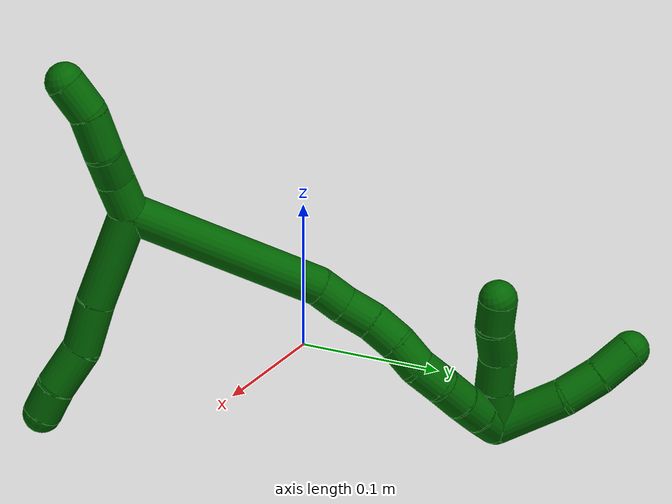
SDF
<sdf version="1.7">
 <world name="default">
  <model name="6">
   <static>0</static>
   <link name="6">
    <collision name="collision-cylinder-e_1_2_8">
     <pose>-0.011917 -0.015446 0.025391 0.54652 -0.381341 -0.108088</pose>
     <geometry><cylinder><radius>0.0125</radius><length>0.064039</length></cylinder></geometry>
     <surface>
      <friction><ode><mu>1.16</mu><mu2>1.16</mu2><slip1>0</slip1><slip2>0</slip2></ode></friction>
      <contact><ode><kp>1e+06</kp><kd>1</kd><max_vel>0</max_vel><min_depth>0.001</min_depth></ode></contact>
     </surface>
    </collision>
    <visual name="visual-cylinder-e_1_2_8">
     <pose>-0.011917 -0.015446 0.025391 0.54652 -0.381341 -0.108088</pose>
     <geometry><cylinder><radius>0.0125</radius><length>0.064039</length></cylinder></geometry>
     <material><ambient>0 0.392157 0.003922 1</ambient></material>
    </visual>
    <collision name="collision-cylinder-e_2_8_9">
     <pose>-0.029578 -0.038301 0.064843 0.484936 -0.346824 -0.086598</pose>
     <geometry><cylinder><radius>0.0125</radius><length>0.033801</length></cylinder></geometry>
     <surface>
      <friction><ode><mu>1.16</mu><mu2>1.16</mu2><slip1>0</slip1><slip2>0</slip2></ode></friction>
      <contact><ode><kp>1e+06</kp><kd>1</kd><max_vel>0</max_vel><min_depth>0.001</min_depth></ode></contact>
     </surface>
    </collision>
    <visual name="visual-cylinder-e_2_8_9">
     <pose>-0.029578 -0.038301 0.064843 0.484936 -0.346824 -0.086598</pose>
     <geometry><cylinder><radius>0.0125</radius><length>0.033801</length></cylinder></geometry>
     <material><ambient>0 0.392157 0.003922 1</ambient></material>
    </visual>
    <collision name="collision-cylinder-e_3_9_10">
     <pose>-0.042484 -0.055246 0.088665 0.773793 -0.48329 -0.200161</pose>
     <geometry><cylinder><radius>0.0125</radius><length>0.030821</length></cylinder></geometry>
     <surface>
      <friction><ode><mu>1.16</mu><mu2>1.16</mu2><slip1>0</slip1><slip2>0</slip2></ode></friction>
      <contact><ode><kp>1e+06</kp><kd>1</kd><max_vel>0</max_vel><min_depth>0.001</min_depth></ode></contact>
     </surface>
    </collision>
    <visual name="visual-cylinder-e_3_9_10">
     <pose>-0.042484 -0.055246 0.088665 0.773793 -0.48329 -0.200161</pose>
     <geometry><cylinder><radius>0.0125</radius><length>0.030821</length></cylinder></geometry>
     <material><ambient>0 0.392157 0.003922 1</ambient></material>
    </visual>
    <collision name="collision-cylinder-e_4_10_6">
     <pose>-0.053104 -0.071053 0.106333 0.670411 -0.330203 -0.115953</pose>
     <geometry><cylinder><radius>0.0125</radius><length>0.021338</length></cylinder></geometry>
     <surface>
      <friction><ode><mu>1.16</mu><mu2>1.16</mu2><slip1>0</slip1><slip2>0</slip2></ode></friction>
      <contact><ode><kp>1e+06</kp><kd>1</kd><max_vel>0</max_vel><min_depth>0.001</min_depth></ode></contact>
     </surface>
    </collision>
    <visual name="visual-cylinder-e_4_10_6">
     <pose>-0.053104 -0.071053 0.106333 0.670411 -0.330203 -0.115953</pose>
     <geometry><cylinder><radius>0.0125</radius><length>0.021338</length></cylinder></geometry>
     <material><ambient>0 0.392157 0.003922 1</ambient></material>
    </visual>
    <collision name="collision-cylinder-e_1_2_11">
     <pose>-4.9e-05 -0.000652 -0.01249 3.08941 -0.003907 -0.14942</pose>
     <geometry><cylinder><radius>0.0125</radius><length>0.025015</length></cylinder></geometry>
     <surface>
      <friction><ode><mu>1.16</mu><mu2>1.16</mu2><slip1>0</slip1><slip2>0</slip2></ode></friction>
      <contact><ode><kp>1e+06</kp><kd>1</kd><max_vel>0</max_vel><min_depth>0.001</min_depth></ode></contact>
     </surface>
    </collision>
    <visual name="visual-cylinder-e_1_2_11">
     <pose>-4.9e-05 -0.000652 -0.01249 3.08941 -0.003907 -0.14942</pose>
     <geometry><cylinder><radius>0.0125</radius><length>0.025015</length></cylinder></geometry>
     <material><ambient>0 0.392157 0.003922 1</ambient></material>
    </visual>
    <collision name="collision-cylinder-e_2_11_12">
     <pose>-0.002108 1.7e-05 -0.035902 -3.02116 -0.180743 1.96749</pose>
     <geometry><cylinder><radius>0.0125</radius><length>0.022368</length></cylinder></geometry>
     <surface>
      <friction><ode><mu>1.16</mu><mu2>1.16</mu2><slip1>0</slip1><slip2>0</slip2></ode></friction>
      <contact><ode><kp>1e+06</kp><kd>1</kd><max_vel>0</max_vel><min_depth>0.001</min_depth></ode></contact>
     </surface>
    </collision>
    <visual name="visual-cylinder-e_2_11_12">
     <pose>-0.002108 1.7e-05 -0.035902 -3.02116 -0.180743 1.96749</pose>
     <geometry><cylinder><radius>0.0125</radius><length>0.022368</length></cylinder></geometry>
     <material><ambient>0 0.392157 0.003922 1</ambient></material>
    </visual>
    <collision name="collision-cylinder-e_3_12_13">
     <pose>-0.003759 0.000919 -0.061124 3.11226 0.025126 1.41651</pose>
     <geometry><cylinder><radius>0.0125</radius><length>0.028621</length></cylinder></geometry>
     <surface>
      <friction><ode><mu>1.16</mu><mu2>1.16</mu2><slip1>0</slip1><slip2>0</slip2></ode></friction>
      <contact><ode><kp>1e+06</kp><kd>1</kd><max_vel>0</max_vel><min_depth>0.001</min_depth></ode></contact>
     </surface>
    </collision>
    <visual name="visual-cylinder-e_3_12_13">
     <pose>-0.003759 0.000919 -0.061124 3.11226 0.025126 1.41651</pose>
     <geometry><cylinder><radius>0.0125</radius><length>0.028621</length></cylinder></geometry>
     <material><ambient>0 0.392157 0.003922 1</ambient></material>
    </visual>
    <collision name="collision-cylinder-e_4_13_5">
     <pose>-0.003786 -0.003383 -0.08677 2.81187 -0.032181 -0.192842</pose>
     <geometry><cylinder><radius>0.0125</radius><length>0.023996</length></cylinder></geometry>
     <surface>
      <friction><ode><mu>1.16</mu><mu2>1.16</mu2><slip1>0</slip1><slip2>0</slip2></ode></friction>
      <contact><ode><kp>1e+06</kp><kd>1</kd><max_vel>0</max_vel><min_depth>0.001</min_depth></ode></contact>
     </surface>
    </collision>
    <visual name="visual-cylinder-e_4_13_5">
     <pose>-0.003786 -0.003383 -0.08677 2.81187 -0.032181 -0.192842</pose>
     <geometry><cylinder><radius>0.0125</radius><length>0.023996</length></cylinder></geometry>
     <material><ambient>0 0.392157 0.003922 1</ambient></material>
    </visual>
    <collision name="collision-cylinder-e_1_2_14">
     <pose>0.033072 0.033706 0.050155 -0.591703 0.500757 -0.155586</pose>
     <geometry><cylinder><radius>0.0125</radius><length>0.137773</length></cylinder></geometry>
     <surface>
      <friction><ode><mu>1.16</mu><mu2>1.16</mu2><slip1>0</slip1><slip2>0</slip2></ode></friction>
      <contact><ode><kp>1e+06</kp><kd>1</kd><max_vel>0</max_vel><min_depth>0.001</min_depth></ode></contact>
     </surface>
    </collision>
    <visual name="visual-cylinder-e_1_2_14">
     <pose>0.033072 0.033706 0.050155 -0.591703 0.500757 -0.155586</pose>
     <geometry><cylinder><radius>0.0125</radius><length>0.137773</length></cylinder></geometry>
     <material><ambient>0 0.392157 0.003922 1</ambient></material>
    </visual>
    <collision name="collision-cylinder-e_2_14_15">
     <pose>0.06812 0.072789 0.108697 -0.570175 0.195895 -0.057579</pose>
     <geometry><cylinder><radius>0.0125</radius><length>0.020315</length></cylinder></geometry>
     <surface>
      <friction><ode><mu>1.16</mu><mu2>1.16</mu2><slip1>0</slip1><slip2>0</slip2></ode></friction>
      <contact><ode><kp>1e+06</kp><kd>1</kd><max_vel>0</max_vel><min_depth>0.001</min_depth></ode></contact>
     </surface>
    </collision>
    <visual name="visual-cylinder-e_2_14_15">
     <pose>0.06812 0.072789 0.108697 -0.570175 0.195895 -0.057579</pose>
     <geometry><cylinder><radius>0.0125</radius><length>0.020315</length></cylinder></geometry>
     <material><ambient>0 0.392157 0.003922 1</ambient></material>
    </visual>
    <collision name="collision-cylinder-e_3_15_16">
     <pose>0.071979 0.085162 0.124719 -0.741758 0.179763 -0.070065</pose>
     <geometry><cylinder><radius>0.0125</radius><length>0.021049</length></cylinder></geometry>
     <surface>
      <friction><ode><mu>1.16</mu><mu2>1.16</mu2><slip1>0</slip1><slip2>0</slip2></ode></friction>
      <contact><ode><kp>1e+06</kp><kd>1</kd><max_vel>0</max_vel><min_depth>0.001</min_depth></ode></contact>
     </surface>
    </collision>
    <visual name="visual-cylinder-e_3_15_16">
     <pose>0.071979 0.085162 0.124719 -0.741758 0.179763 -0.070065</pose>
     <geometry><cylinder><radius>0.0125</radius><length>0.021049</length></cylinder></geometry>
     <material><ambient>0 0.392157 0.003922 1</ambient></material>
    </visual>
    <collision name="collision-cylinder-e_4_16_17">
     <pose>0.074002 0.098562 0.140476 -0.667661 0.013659 -0.004737</pose>
     <geometry><cylinder><radius>0.0125</radius><length>0.02069</length></cylinder></geometry>
     <surface>
      <friction><ode><mu>1.16</mu><mu2>1.16</mu2><slip1>0</slip1><slip2>0</slip2></ode></friction>
      <contact><ode><kp>1e+06</kp><kd>1</kd><max_vel>0</max_vel><min_depth>0.001</min_depth></ode></contact>
     </surface>
    </collision>
    <visual name="visual-cylinder-e_4_16_17">
     <pose>0.074002 0.098562 0.140476 -0.667661 0.013659 -0.004737</pose>
     <geometry><cylinder><radius>0.0125</radius><length>0.02069</length></cylinder></geometry>
     <material><ambient>0 0.392157 0.003922 1</ambient></material>
    </visual>
    <collision name="collision-cylinder-e_5_17_18">
     <pose>0.073962 0.109489 0.157548 -0.467938 -0.018053 0.004303</pose>
     <geometry><cylinder><radius>0.0125</radius><length>0.020057</length></cylinder></geometry>
     <surface>
      <friction><ode><mu>1.16</mu><mu2>1.16</mu2><slip1>0</slip1><slip2>0</slip2></ode></friction>
      <contact><ode><kp>1e+06</kp><kd>1</kd><max_vel>0</max_vel><min_depth>0.001</min_depth></ode></contact>
     </surface>
    </collision>
    <visual name="visual-cylinder-e_5_17_18">
     <pose>0.073962 0.109489 0.157548 -0.467938 -0.018053 0.004303</pose>
     <geometry><cylinder><radius>0.0125</radius><length>0.020057</length></cylinder></geometry>
     <material><ambient>0 0.392157 0.003922 1</ambient></material>
    </visual>
    <collision name="collision-cylinder-e_6_18_19">
     <pose>0.075949 0.118822 0.175009 -0.514333 0.218161 -0.057587</pose>
     <geometry><cylinder><radius>0.0125</radius><length>0.020029</length></cylinder></geometry>
     <surface>
      <friction><ode><mu>1.16</mu><mu2>1.16</mu2><slip1>0</slip1><slip2>0</slip2></ode></friction>
      <contact><ode><kp>1e+06</kp><kd>1</kd><max_vel>0</max_vel><min_depth>0.001</min_depth></ode></contact>
     </surface>
    </collision>
    <visual name="visual-cylinder-e_6_18_19">
     <pose>0.075949 0.118822 0.175009 -0.514333 0.218161 -0.057587</pose>
     <geometry><cylinder><radius>0.0125</radius><length>0.020029</length></cylinder></geometry>
     <material><ambient>0 0.392157 0.003922 1</ambient></material>
    </visual>
    <collision name="collision-cylinder-e_7_19_20">
     <pose>0.081934 0.125985 0.192499 -0.256384 0.390166 -0.050929</pose>
     <geometry><cylinder><radius>0.0125</radius><length>0.020072</length></cylinder></geometry>
     <surface>
      <friction><ode><mu>1.16</mu><mu2>1.16</mu2><slip1>0</slip1><slip2>0</slip2></ode></friction>
      <contact><ode><kp>1e+06</kp><kd>1</kd><max_vel>0</max_vel><min_depth>0.001</min_depth></ode></contact>
     </surface>
    </collision>
    <visual name="visual-cylinder-e_7_19_20">
     <pose>0.081934 0.125985 0.192499 -0.256384 0.390166 -0.050929</pose>
     <geometry><cylinder><radius>0.0125</radius><length>0.020072</length></cylinder></geometry>
     <material><ambient>0 0.392157 0.003922 1</ambient></material>
    </visual>
    <collision name="collision-cylinder-e_8_20_21">
     <pose>0.090541 0.129694 0.210156 -0.154858 0.499299 -0.039558</pose>
     <geometry><cylinder><radius>0.0125</radius><length>0.020009</length></cylinder></geometry>
     <surface>
      <friction><ode><mu>1.16</mu><mu2>1.16</mu2><slip1>0</slip1><slip2>0</slip2></ode></friction>
      <contact><ode><kp>1e+06</kp><kd>1</kd><max_vel>0</max_vel><min_depth>0.001</min_depth></ode></contact>
     </surface>
    </collision>
    <visual name="visual-cylinder-e_8_20_21">
     <pose>0.090541 0.129694 0.210156 -0.154858 0.499299 -0.039558</pose>
     <geometry><cylinder><radius>0.0125</radius><length>0.020009</length></cylinder></geometry>
     <material><ambient>0 0.392157 0.003922 1</ambient></material>
    </visual>
    <collision name="collision-cylinder-e_9_21_1">
     <pose>0.10086 0.131726 0.227143 -0.081405 0.585575 -0.024552</pose>
     <geometry><cylinder><radius>0.0125</radius><length>0.020007</length></cylinder></geometry>
     <surface>
      <friction><ode><mu>1.16</mu><mu2>1.16</mu2><slip1>0</slip1><slip2>0</slip2></ode></friction>
      <contact><ode><kp>1e+06</kp><kd>1</kd><max_vel>0</max_vel><min_depth>0.001</min_depth></ode></contact>
     </surface>
    </collision>
    <visual name="visual-cylinder-e_9_21_1">
     <pose>0.10086 0.131726 0.227143 -0.081405 0.585575 -0.024552</pose>
     <geometry><cylinder><radius>0.0125</radius><length>0.020007</length></cylinder></geometry>
     <material><ambient>0 0.392157 0.003922 1</ambient></material>
    </visual>
    <collision name="collision-cylinder-e_1_1_22">
     <pose>0.10747 0.136105 0.220986 -2.89113 0.072264 -0.559222</pose>
     <geometry><cylinder><radius>0.0125</radius><length>0.029943</length></cylinder></geometry>
     <surface>
      <friction><ode><mu>1.16</mu><mu2>1.16</mu2><slip1>0</slip1><slip2>0</slip2></ode></friction>
      <contact><ode><kp>1e+06</kp><kd>1</kd><max_vel>0</max_vel><min_depth>0.001</min_depth></ode></contact>
     </surface>
    </collision>
    <visual name="visual-cylinder-e_1_1_22">
     <pose>0.10747 0.136105 0.220986 -2.89113 0.072264 -0.559222</pose>
     <geometry><cylinder><radius>0.0125</radius><length>0.029943</length></cylinder></geometry>
     <material><ambient>0 0.392157 0.003922 1</ambient></material>
    </visual>
    <collision name="collision-cylinder-e_2_22_23">
     <pose>0.110429 0.143838 0.195617 -2.78741 0.160186 -0.843198</pose>
     <geometry><cylinder><radius>0.0125</radius><length>0.02355</length></cylinder></geometry>
     <surface>
      <friction><ode><mu>1.16</mu><mu2>1.16</mu2><slip1>0</slip1><slip2>0</slip2></ode></friction>
      <contact><ode><kp>1e+06</kp><kd>1</kd><max_vel>0</max_vel><min_depth>0.001</min_depth></ode></contact>
     </surface>
    </collision>
    <visual name="visual-cylinder-e_2_22_23">
     <pose>0.110429 0.143838 0.195617 -2.78741 0.160186 -0.843198</pose>
     <geometry><cylinder><radius>0.0125</radius><length>0.02355</length></cylinder></geometry>
     <material><ambient>0 0.392157 0.003922 1</ambient></material>
    </visual>
    <collision name="collision-cylinder-e_3_23_24">
     <pose>0.111097 0.151168 0.172409 -2.87968 -0.094673 0.690532</pose>
     <geometry><cylinder><radius>0.0125</radius><length>0.025594</length></cylinder></geometry>
     <surface>
      <friction><ode><mu>1.16</mu><mu2>1.16</mu2><slip1>0</slip1><slip2>0</slip2></ode></friction>
      <contact><ode><kp>1e+06</kp><kd>1</kd><max_vel>0</max_vel><min_depth>0.001</min_depth></ode></contact>
     </surface>
    </collision>
    <visual name="visual-cylinder-e_3_23_24">
     <pose>0.111097 0.151168 0.172409 -2.87968 -0.094673 0.690532</pose>
     <geometry><cylinder><radius>0.0125</radius><length>0.025594</length></cylinder></geometry>
     <material><ambient>0 0.392157 0.003922 1</ambient></material>
    </visual>
    <collision name="collision-cylinder-e_4_24_4">
     <pose>0.110987 0.158396 0.150476 -2.75406 0.105334 -0.524895</pose>
     <geometry><cylinder><radius>0.0125</radius><length>0.020914</length></cylinder></geometry>
     <surface>
      <friction><ode><mu>1.16</mu><mu2>1.16</mu2><slip1>0</slip1><slip2>0</slip2></ode></friction>
      <contact><ode><kp>1e+06</kp><kd>1</kd><max_vel>0</max_vel><min_depth>0.001</min_depth></ode></contact>
     </surface>
    </collision>
    <visual name="visual-cylinder-e_4_24_4">
     <pose>0.110987 0.158396 0.150476 -2.75406 0.105334 -0.524895</pose>
     <geometry><cylinder><radius>0.0125</radius><length>0.020914</length></cylinder></geometry>
     <material><ambient>0 0.392157 0.003922 1</ambient></material>
    </visual>
    <collision name="collision-cylinder-e_1_1_25">
     <pose>0.117305 0.153519 0.231572 -1.75256 0.470411 -0.560268</pose>
     <geometry><cylinder><radius>0.0125</radius><length>0.048169</length></cylinder></geometry>
     <surface>
      <friction><ode><mu>1.16</mu><mu2>1.16</mu2><slip1>0</slip1><slip2>0</slip2></ode></friction>
      <contact><ode><kp>1e+06</kp><kd>1</kd><max_vel>0</max_vel><min_depth>0.001</min_depth></ode></contact>
     </surface>
    </collision>
    <visual name="visual-cylinder-e_1_1_25">
     <pose>0.117305 0.153519 0.231572 -1.75256 0.470411 -0.560268</pose>
     <geometry><cylinder><radius>0.0125</radius><length>0.048169</length></cylinder></geometry>
     <material><ambient>0 0.392157 0.003922 1</ambient></material>
    </visual>
    <collision name="collision-cylinder-e_2_25_26">
     <pose>0.136969 0.184079 0.225334 -1.81535 0.732037 -0.91235</pose>
     <geometry><cylinder><radius>0.0125</radius><length>0.026174</length></cylinder></geometry>
     <surface>
      <friction><ode><mu>1.16</mu><mu2>1.16</mu2><slip1>0</slip1><slip2>0</slip2></ode></friction>
      <contact><ode><kp>1e+06</kp><kd>1</kd><max_vel>0</max_vel><min_depth>0.001</min_depth></ode></contact>
     </surface>
    </collision>
    <visual name="visual-cylinder-e_2_25_26">
     <pose>0.136969 0.184079 0.225334 -1.81535 0.732037 -0.91235</pose>
     <geometry><cylinder><radius>0.0125</radius><length>0.026174</length></cylinder></geometry>
     <material><ambient>0 0.392157 0.003922 1</ambient></material>
    </visual>
    <collision name="collision-cylinder-e_3_26_3">
     <pose>0.154992 0.201624 0.219386 -1.98806 0.808306 -1.16317</pose>
     <geometry><cylinder><radius>0.0125</radius><length>0.025656</length></cylinder></geometry>
     <surface>
      <friction><ode><mu>1.16</mu><mu2>1.16</mu2><slip1>0</slip1><slip2>0</slip2></ode></friction>
      <contact><ode><kp>1e+06</kp><kd>1</kd><max_vel>0</max_vel><min_depth>0.001</min_depth></ode></contact>
     </surface>
    </collision>
    <visual name="visual-cylinder-e_3_26_3">
     <pose>0.154992 0.201624 0.219386 -1.98806 0.808306 -1.16317</pose>
     <geometry><cylinder><radius>0.0125</radius><length>0.025656</length></cylinder></geometry>
     <material><ambient>0 0.392157 0.003922 1</ambient></material>
    </visual>
    <collision name="collision-sphere-3">
     <pose>0.164269 0.209725 0.215795 0 -0 0</pose>
     <geometry><sphere><radius>0.0125</radius></sphere></geometry>
     <surface>
      <friction><ode><mu>1.16</mu><mu2>1.16</mu2><slip1>0</slip1><slip2>0</slip2></ode></friction>
      <contact><ode><kp>1e+06</kp><kd>1</kd><max_vel>0</max_vel><min_depth>0.001</min_depth></ode></contact>
     </surface>
    </collision>
    <visual name="visual-sphere-3">
     <pose>0.164269 0.209725 0.215795 0 -0 0</pose>
     <geometry><sphere><radius>0.0125</radius></sphere></geometry>
     <material><ambient>0 0.392157 0.003922 1</ambient></material>
    </visual>
    <collision name="collision-sphere-26">
     <pose>0.145716 0.193524 0.222977 0 -0 0</pose>
     <geometry><sphere><radius>0.0125</radius></sphere></geometry>
     <surface>
      <friction><ode><mu>1.16</mu><mu2>1.16</mu2><slip1>0</slip1><slip2>0</slip2></ode></friction>
      <contact><ode><kp>1e+06</kp><kd>1</kd><max_vel>0</max_vel><min_depth>0.001</min_depth></ode></contact>
     </surface>
    </collision>
    <visual name="visual-sphere-26">
     <pose>0.145716 0.193524 0.222977 0 -0 0</pose>
     <geometry><sphere><radius>0.0125</radius></sphere></geometry>
     <material><ambient>0 0.392157 0.003922 1</ambient></material>
    </visual>
    <collision name="collision-sphere-25">
     <pose>0.128221 0.174634 0.227691 0 -0 0</pose>
     <geometry><sphere><radius>0.0125</radius></sphere></geometry>
     <surface>
      <friction><ode><mu>1.16</mu><mu2>1.16</mu2><slip1>0</slip1><slip2>0</slip2></ode></friction>
      <contact><ode><kp>1e+06</kp><kd>1</kd><max_vel>0</max_vel><min_depth>0.001</min_depth></ode></contact>
     </surface>
    </collision>
    <visual name="visual-sphere-25">
     <pose>0.128221 0.174634 0.227691 0 -0 0</pose>
     <geometry><sphere><radius>0.0125</radius></sphere></geometry>
     <material><ambient>0 0.392157 0.003922 1</ambient></material>
    </visual>
    <collision name="collision-sphere-4">
     <pose>0.112086 0.162326 0.140849 0 -0 0</pose>
     <geometry><sphere><radius>0.0125</radius></sphere></geometry>
     <surface>
      <friction><ode><mu>1.16</mu><mu2>1.16</mu2><slip1>0</slip1><slip2>0</slip2></ode></friction>
      <contact><ode><kp>1e+06</kp><kd>1</kd><max_vel>0</max_vel><min_depth>0.001</min_depth></ode></contact>
     </surface>
    </collision>
    <visual name="visual-sphere-4">
     <pose>0.112086 0.162326 0.140849 0 -0 0</pose>
     <geometry><sphere><radius>0.0125</radius></sphere></geometry>
     <material><ambient>0 0.392157 0.003922 1</ambient></material>
    </visual>
    <collision name="collision-sphere-24">
     <pose>0.109887 0.154467 0.160104 0 -0 0</pose>
     <geometry><sphere><radius>0.0125</radius></sphere></geometry>
     <surface>
      <friction><ode><mu>1.16</mu><mu2>1.16</mu2><slip1>0</slip1><slip2>0</slip2></ode></friction>
      <contact><ode><kp>1e+06</kp><kd>1</kd><max_vel>0</max_vel><min_depth>0.001</min_depth></ode></contact>
     </surface>
    </collision>
    <visual name="visual-sphere-24">
     <pose>0.109887 0.154467 0.160104 0 -0 0</pose>
     <geometry><sphere><radius>0.0125</radius></sphere></geometry>
     <material><ambient>0 0.392157 0.003922 1</ambient></material>
    </visual>
    <collision name="collision-sphere-23">
     <pose>0.112307 0.147869 0.184714 0 -0 0</pose>
     <geometry><sphere><radius>0.0125</radius></sphere></geometry>
     <surface>
      <friction><ode><mu>1.16</mu><mu2>1.16</mu2><slip1>0</slip1><slip2>0</slip2></ode></friction>
      <contact><ode><kp>1e+06</kp><kd>1</kd><max_vel>0</max_vel><min_depth>0.001</min_depth></ode></contact>
     </surface>
    </collision>
    <visual name="visual-sphere-23">
     <pose>0.112307 0.147869 0.184714 0 -0 0</pose>
     <geometry><sphere><radius>0.0125</radius></sphere></geometry>
     <material><ambient>0 0.392157 0.003922 1</ambient></material>
    </visual>
    <collision name="collision-sphere-22">
     <pose>0.10855 0.139806 0.20652 0 -0 0</pose>
     <geometry><sphere><radius>0.0125</radius></sphere></geometry>
     <surface>
      <friction><ode><mu>1.16</mu><mu2>1.16</mu2><slip1>0</slip1><slip2>0</slip2></ode></friction>
      <contact><ode><kp>1e+06</kp><kd>1</kd><max_vel>0</max_vel><min_depth>0.001</min_depth></ode></contact>
     </surface>
    </collision>
    <visual name="visual-sphere-22">
     <pose>0.10855 0.139806 0.20652 0 -0 0</pose>
     <geometry><sphere><radius>0.0125</radius></sphere></geometry>
     <material><ambient>0 0.392157 0.003922 1</ambient></material>
    </visual>
    <collision name="collision-sphere-1">
     <pose>0.106389 0.132404 0.235452 0 -0 0</pose>
     <geometry><sphere><radius>0.0125</radius></sphere></geometry>
     <surface>
      <friction><ode><mu>1.16</mu><mu2>1.16</mu2><slip1>0</slip1><slip2>0</slip2></ode></friction>
      <contact><ode><kp>1e+06</kp><kd>1</kd><max_vel>0</max_vel><min_depth>0.001</min_depth></ode></contact>
     </surface>
    </collision>
    <visual name="visual-sphere-1">
     <pose>0.106389 0.132404 0.235452 0 -0 0</pose>
     <geometry><sphere><radius>0.0125</radius></sphere></geometry>
     <material><ambient>0 0.392157 0.003922 1</ambient></material>
    </visual>
    <collision name="collision-sphere-21">
     <pose>0.095331 0.131048 0.218834 0 -0 0</pose>
     <geometry><sphere><radius>0.0125</radius></sphere></geometry>
     <surface>
      <friction><ode><mu>1.16</mu><mu2>1.16</mu2><slip1>0</slip1><slip2>0</slip2></ode></friction>
      <contact><ode><kp>1e+06</kp><kd>1</kd><max_vel>0</max_vel><min_depth>0.001</min_depth></ode></contact>
     </surface>
    </collision>
    <visual name="visual-sphere-21">
     <pose>0.095331 0.131048 0.218834 0 -0 0</pose>
     <geometry><sphere><radius>0.0125</radius></sphere></geometry>
     <material><ambient>0 0.392157 0.003922 1</ambient></material>
    </visual>
    <collision name="collision-sphere-11">
     <pose>-9.8e-05 -0.001305 -0.02498 0 -0 0</pose>
     <geometry><sphere><radius>0.0125</radius></sphere></geometry>
     <surface>
      <friction><ode><mu>1.16</mu><mu2>1.16</mu2><slip1>0</slip1><slip2>0</slip2></ode></friction>
      <contact><ode><kp>1e+06</kp><kd>1</kd><max_vel>0</max_vel><min_depth>0.001</min_depth></ode></contact>
     </surface>
    </collision>
    <visual name="visual-sphere-11">
     <pose>-9.8e-05 -0.001305 -0.02498 0 -0 0</pose>
     <geometry><sphere><radius>0.0125</radius></sphere></geometry>
     <material><ambient>0 0.392157 0.003922 1</ambient></material>
    </visual>
    <collision name="collision-sphere-6">
     <pose>-0.056564 -0.077324 0.114242 0 -0 0</pose>
     <geometry><sphere><radius>0.0125</radius></sphere></geometry>
     <surface>
      <friction><ode><mu>1.16</mu><mu2>1.16</mu2><slip1>0</slip1><slip2>0</slip2></ode></friction>
      <contact><ode><kp>1e+06</kp><kd>1</kd><max_vel>0</max_vel><min_depth>0.001</min_depth></ode></contact>
     </surface>
    </collision>
    <visual name="visual-sphere-6">
     <pose>-0.056564 -0.077324 0.114242 0 -0 0</pose>
     <geometry><sphere><radius>0.0125</radius></sphere></geometry>
     <material><ambient>0 0.392157 0.003922 1</ambient></material>
    </visual>
    <collision name="collision-sphere-10">
     <pose>-0.049645 -0.064782 0.098425 0 -0 0</pose>
     <geometry><sphere><radius>0.0125</radius></sphere></geometry>
     <surface>
      <friction><ode><mu>1.16</mu><mu2>1.16</mu2><slip1>0</slip1><slip2>0</slip2></ode></friction>
      <contact><ode><kp>1e+06</kp><kd>1</kd><max_vel>0</max_vel><min_depth>0.001</min_depth></ode></contact>
     </surface>
    </collision>
    <visual name="visual-sphere-10">
     <pose>-0.049645 -0.064782 0.098425 0 -0 0</pose>
     <geometry><sphere><radius>0.0125</radius></sphere></geometry>
     <material><ambient>0 0.392157 0.003922 1</ambient></material>
    </visual>
    <collision name="collision-sphere-9">
     <pose>-0.035323 -0.04571 0.078905 0 -0 0</pose>
     <geometry><sphere><radius>0.0125</radius></sphere></geometry>
     <surface>
      <friction><ode><mu>1.16</mu><mu2>1.16</mu2><slip1>0</slip1><slip2>0</slip2></ode></friction>
      <contact><ode><kp>1e+06</kp><kd>1</kd><max_vel>0</max_vel><min_depth>0.001</min_depth></ode></contact>
     </surface>
    </collision>
    <visual name="visual-sphere-9">
     <pose>-0.035323 -0.04571 0.078905 0 -0 0</pose>
     <geometry><sphere><radius>0.0125</radius></sphere></geometry>
     <material><ambient>0 0.392157 0.003922 1</ambient></material>
    </visual>
    <collision name="collision-sphere-2">
     <geometry><sphere><radius>0.0125</radius></sphere></geometry>
     <surface>
      <friction><ode><mu>1.16</mu><mu2>1.16</mu2><slip1>0</slip1><slip2>0</slip2></ode></friction>
      <contact><ode><kp>1e+06</kp><kd>1</kd><max_vel>0</max_vel><min_depth>0.001</min_depth></ode></contact>
     </surface>
    </collision>
    <visual name="visual-sphere-2">
     <geometry><sphere><radius>0.0125</radius></sphere></geometry>
     <material><ambient>0 0.392157 0.003922 1</ambient></material>
    </visual>
    <collision name="collision-sphere-19">
     <pose>0.078116 0.123632 0.183521 0 -0 0</pose>
     <geometry><sphere><radius>0.0125</radius></sphere></geometry>
     <surface>
      <friction><ode><mu>1.16</mu><mu2>1.16</mu2><slip1>0</slip1><slip2>0</slip2></ode></friction>
      <contact><ode><kp>1e+06</kp><kd>1</kd><max_vel>0</max_vel><min_depth>0.001</min_depth></ode></contact>
     </surface>
    </collision>
    <visual name="visual-sphere-19">
     <pose>0.078116 0.123632 0.183521 0 -0 0</pose>
     <geometry><sphere><radius>0.0125</radius></sphere></geometry>
     <material><ambient>0 0.392157 0.003922 1</ambient></material>
    </visual>
    <collision name="collision-sphere-8">
     <pose>-0.023833 -0.030892 0.050781 0 -0 0</pose>
     <geometry><sphere><radius>0.0125</radius></sphere></geometry>
     <surface>
      <friction><ode><mu>1.16</mu><mu2>1.16</mu2><slip1>0</slip1><slip2>0</slip2></ode></friction>
      <contact><ode><kp>1e+06</kp><kd>1</kd><max_vel>0</max_vel><min_depth>0.001</min_depth></ode></contact>
     </surface>
    </collision>
    <visual name="visual-sphere-8">
     <pose>-0.023833 -0.030892 0.050781 0 -0 0</pose>
     <geometry><sphere><radius>0.0125</radius></sphere></geometry>
     <material><ambient>0 0.392157 0.003922 1</ambient></material>
    </visual>
    <collision name="collision-sphere-12">
     <pose>-0.004119 0.001339 -0.046825 0 -0 0</pose>
     <geometry><sphere><radius>0.0125</radius></sphere></geometry>
     <surface>
      <friction><ode><mu>1.16</mu><mu2>1.16</mu2><slip1>0</slip1><slip2>0</slip2></ode></friction>
      <contact><ode><kp>1e+06</kp><kd>1</kd><max_vel>0</max_vel><min_depth>0.001</min_depth></ode></contact>
     </surface>
    </collision>
    <visual name="visual-sphere-12">
     <pose>-0.004119 0.001339 -0.046825 0 -0 0</pose>
     <geometry><sphere><radius>0.0125</radius></sphere></geometry>
     <material><ambient>0 0.392157 0.003922 1</ambient></material>
    </visual>
    <collision name="collision-sphere-13">
     <pose>-0.0034 0.0005 -0.075424 0 -0 0</pose>
     <geometry><sphere><radius>0.0125</radius></sphere></geometry>
     <surface>
      <friction><ode><mu>1.16</mu><mu2>1.16</mu2><slip1>0</slip1><slip2>0</slip2></ode></friction>
      <contact><ode><kp>1e+06</kp><kd>1</kd><max_vel>0</max_vel><min_depth>0.001</min_depth></ode></contact>
     </surface>
    </collision>
    <visual name="visual-sphere-13">
     <pose>-0.0034 0.0005 -0.075424 0 -0 0</pose>
     <geometry><sphere><radius>0.0125</radius></sphere></geometry>
     <material><ambient>0 0.392157 0.003922 1</ambient></material>
    </visual>
    <collision name="collision-sphere-5">
     <pose>-0.004172 -0.007266 -0.098116 0 -0 0</pose>
     <geometry><sphere><radius>0.0125</radius></sphere></geometry>
     <surface>
      <friction><ode><mu>1.16</mu><mu2>1.16</mu2><slip1>0</slip1><slip2>0</slip2></ode></friction>
      <contact><ode><kp>1e+06</kp><kd>1</kd><max_vel>0</max_vel><min_depth>0.001</min_depth></ode></contact>
     </surface>
    </collision>
    <visual name="visual-sphere-5">
     <pose>-0.004172 -0.007266 -0.098116 0 -0 0</pose>
     <geometry><sphere><radius>0.0125</radius></sphere></geometry>
     <material><ambient>0 0.392157 0.003922 1</ambient></material>
    </visual>
    <collision name="collision-sphere-14">
     <pose>0.066143 0.067411 0.10031 0 -0 0</pose>
     <geometry><sphere><radius>0.0125</radius></sphere></geometry>
     <surface>
      <friction><ode><mu>1.16</mu><mu2>1.16</mu2><slip1>0</slip1><slip2>0</slip2></ode></friction>
      <contact><ode><kp>1e+06</kp><kd>1</kd><max_vel>0</max_vel><min_depth>0.001</min_depth></ode></contact>
     </surface>
    </collision>
    <visual name="visual-sphere-14">
     <pose>0.066143 0.067411 0.10031 0 -0 0</pose>
     <geometry><sphere><radius>0.0125</radius></sphere></geometry>
     <material><ambient>0 0.392157 0.003922 1</ambient></material>
    </visual>
    <collision name="collision-sphere-15">
     <pose>0.070097 0.078167 0.117084 0 -0 0</pose>
     <geometry><sphere><radius>0.0125</radius></sphere></geometry>
     <surface>
      <friction><ode><mu>1.16</mu><mu2>1.16</mu2><slip1>0</slip1><slip2>0</slip2></ode></friction>
      <contact><ode><kp>1e+06</kp><kd>1</kd><max_vel>0</max_vel><min_depth>0.001</min_depth></ode></contact>
     </surface>
    </collision>
    <visual name="visual-sphere-15">
     <pose>0.070097 0.078167 0.117084 0 -0 0</pose>
     <geometry><sphere><radius>0.0125</radius></sphere></geometry>
     <material><ambient>0 0.392157 0.003922 1</ambient></material>
    </visual>
    <collision name="collision-sphere-16">
     <pose>0.073861 0.092158 0.132353 0 -0 0</pose>
     <geometry><sphere><radius>0.0125</radius></sphere></geometry>
     <surface>
      <friction><ode><mu>1.16</mu><mu2>1.16</mu2><slip1>0</slip1><slip2>0</slip2></ode></friction>
      <contact><ode><kp>1e+06</kp><kd>1</kd><max_vel>0</max_vel><min_depth>0.001</min_depth></ode></contact>
     </surface>
    </collision>
    <visual name="visual-sphere-16">
     <pose>0.073861 0.092158 0.132353 0 -0 0</pose>
     <geometry><sphere><radius>0.0125</radius></sphere></geometry>
     <material><ambient>0 0.392157 0.003922 1</ambient></material>
    </visual>
    <collision name="collision-sphere-17">
     <pose>0.074143 0.104967 0.148599 0 -0 0</pose>
     <geometry><sphere><radius>0.0125</radius></sphere></geometry>
     <surface>
      <friction><ode><mu>1.16</mu><mu2>1.16</mu2><slip1>0</slip1><slip2>0</slip2></ode></friction>
      <contact><ode><kp>1e+06</kp><kd>1</kd><max_vel>0</max_vel><min_depth>0.001</min_depth></ode></contact>
     </surface>
    </collision>
    <visual name="visual-sphere-17">
     <pose>0.074143 0.104967 0.148599 0 -0 0</pose>
     <geometry><sphere><radius>0.0125</radius></sphere></geometry>
     <material><ambient>0 0.392157 0.003922 1</ambient></material>
    </visual>
    <collision name="collision-sphere-18">
     <pose>0.073781 0.114012 0.166496 0 -0 0</pose>
     <geometry><sphere><radius>0.0125</radius></sphere></geometry>
     <surface>
      <friction><ode><mu>1.16</mu><mu2>1.16</mu2><slip1>0</slip1><slip2>0</slip2></ode></friction>
      <contact><ode><kp>1e+06</kp><kd>1</kd><max_vel>0</max_vel><min_depth>0.001</min_depth></ode></contact>
     </surface>
    </collision>
    <visual name="visual-sphere-18">
     <pose>0.073781 0.114012 0.166496 0 -0 0</pose>
     <geometry><sphere><radius>0.0125</radius></sphere></geometry>
     <material><ambient>0 0.392157 0.003922 1</ambient></material>
    </visual>
    <collision name="collision-sphere-20">
     <pose>0.085751 0.128339 0.201478 0 -0 0</pose>
     <geometry><sphere><radius>0.0125</radius></sphere></geometry>
     <surface>
      <friction><ode><mu>1.16</mu><mu2>1.16</mu2><slip1>0</slip1><slip2>0</slip2></ode></friction>
      <contact><ode><kp>1e+06</kp><kd>1</kd><max_vel>0</max_vel><min_depth>0.001</min_depth></ode></contact>
     </surface>
    </collision>
    <visual name="visual-sphere-20">
     <pose>0.085751 0.128339 0.201478 0 -0 0</pose>
     <geometry><sphere><radius>0.0125</radius></sphere></geometry>
     <material><ambient>0 0.392157 0.003922 1</ambient></material>
    </visual>
    <inertial>
     <pose>0.049611 0.064995 0.105687 0 -0 0</pose>
     <mass>0.75</mass>
     <inertia>
      <ixx>0.000225</ixx>
      <ixy>0</ixy>
      <ixz>0</ixz>
      <iyy>0.000195</iyy>
      <iyz>0</iyz>
      <izz>-0.000208</izz>
     </inertia>
    </inertial>
   </link>
   <pose>0.249008 0.009903 0.180825 2.95017 -0.281971 3.13519</pose>
  </model>
 </world>
</sdf>
